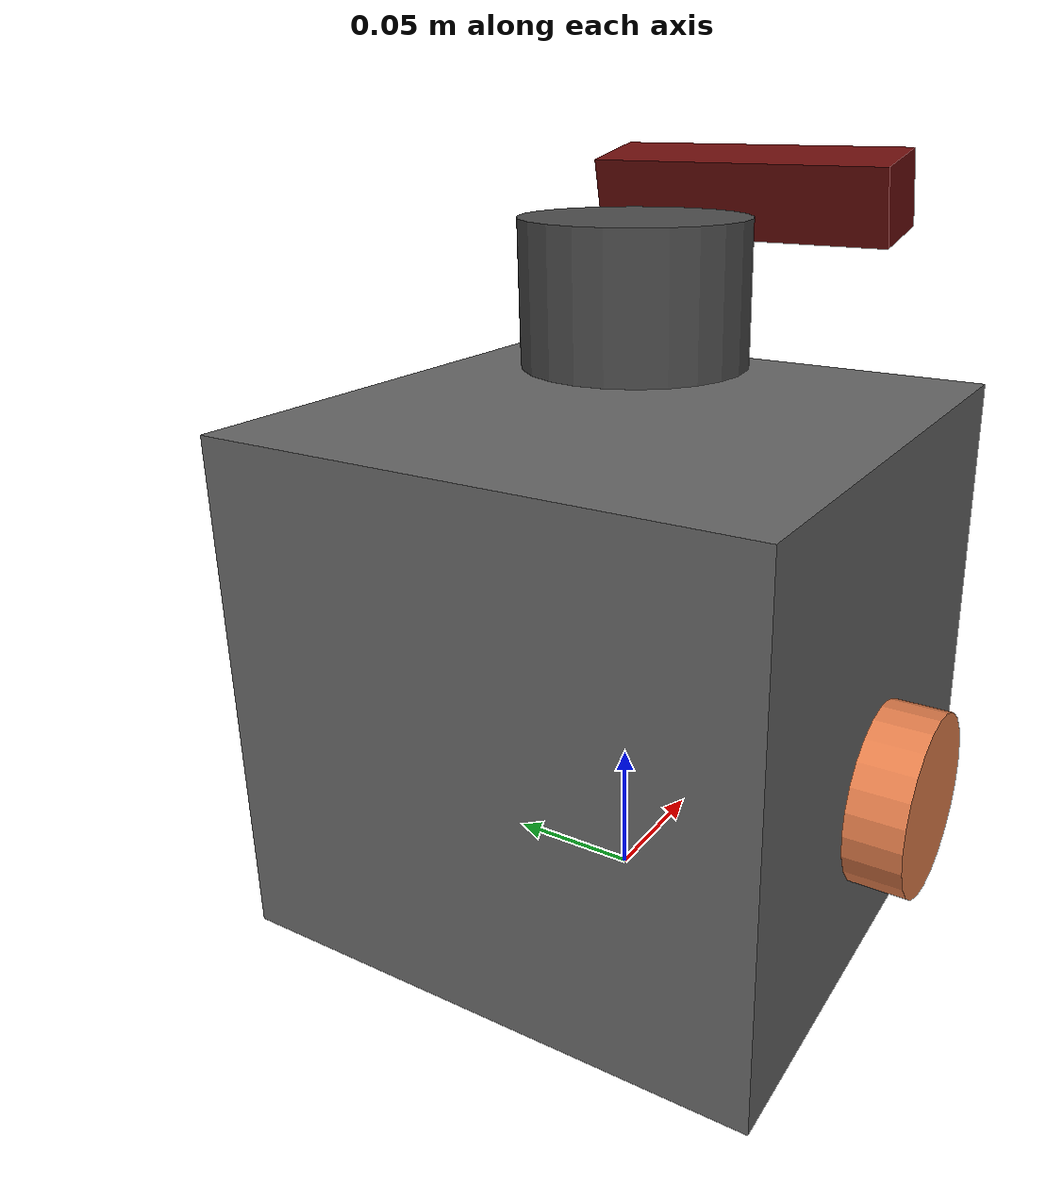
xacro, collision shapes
<?xml version="1.0"?>
<robot name="linorobot2_2wd" xmlns:xacro="http://ros.org/wiki/xacro">

  <xacro:include filename="$(find linorobot2_description)/urdf/2wd_properties.urdf.xacro" />
  <xacro:include filename="$(find linorobot2_description)/urdf/mech/base.urdf.xacro" />
  <xacro:include filename="$(find linorobot2_description)/urdf/mech/wheel.urdf.xacro" />
  <xacro:include filename="$(find linorobot2_description)/urdf/mech/caster_wheel.urdf.xacro" />
  <xacro:include filename="$(find linorobot2_description)/urdf/sensors/imu.urdf.xacro" />
  <xacro:include filename="$(find linorobot2_description)/urdf/sensors/generic_laser.urdf.xacro" />
  <xacro:include filename="$(find linorobot2_description)/urdf/sensors/depth_sensor.urdf.xacro" />
  <xacro:include filename="$(find linorobot2_description)/urdf/controllers/diff_drive.urdf.xacro" />

  <xacro:base
    length="${base_length}"
    width="${base_width}"
    height="${base_height}"
    mass="${base_mass}"
    wheel_radius="${wheel_radius}"
    wheel_pos_z="${wheel_pos_z}"
/>
<!--xyz=0.00004066, -0.10688, 0"  IGNORE   4.0661E-05 -0.10688 0 -->
  <xacro:wheel
    side="right"
    radius="${wheel_radius}"
    width="${wheel_width}"
    pos_x="${wheel_pos_x}"
    pos_y="${-wheel_pos_y}"
    pos_z="${wheel_pos_z}"
    mass="${wheel_mass}"
  />
  <xacro:wheel
    side="left"
    radius="${wheel_radius}"
    width="${wheel_width}"
    pos_x="${wheel_pos_x}"
    pos_y="${wheel_pos_y}"
    pos_z="${wheel_pos_z}"
    mass="${wheel_mass}"
  />

  <xacro:if value="${front_caster_wheel}">
    <xacro:caster_wheel
      side="front"
      mass="0.01"
      base_length="${base_length}"
      wheel_radius="${wheel_radius}"
      wheel_pos_z="-0.0263800000000001"
    />
  </xacro:if>

  <xacro:if value="${rear_caster_wheel}">
    <xacro:caster_wheel
      side="rear"
      mass="0.01"
      base_length="${base_length}"
      wheel_radius="${wheel_radius}"
      wheel_pos_z="-0.0263800000000001"
    />
  </xacro:if>

  <xacro:imu/>

  <xacro:generic_laser>
    <xacro:insert_block name="laser_pose" />
  </xacro:generic_laser>

  <xacro:depth_sensor>
    <xacro:insert_block name="depth_sensor_pose" />
  </xacro:depth_sensor>

  <xacro:diff_drive_controller
    wheel_separation="${wheel_pos_y * 2}"
    wheel_radius="${wheel_radius}"
    wheel_torque="${wheel_torque}"
  />
</robot>

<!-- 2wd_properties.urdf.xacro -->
<robot xmlns:xacro="http://ros.org/wiki/xacro">
  <xacro:property name="base_length" value="0.20" />
  <xacro:property name="base_width" value="0.20" />
  <xacro:property name="base_height" value="0.18852" />
  <xacro:property name="base_mass" value="2.5" />

  <xacro:property name="wheel_radius" value="0.0325" />
  <xacro:property name="wheel_width" value="0.027" />
  <xacro:property name="wheel_pos_x" value="0.0" />
  <xacro:property name="wheel_pos_y" value="0.10688" />
  <xacro:property name="wheel_pos_z" value="0.0325" />
  <xacro:property name="wheel_mass" value="0.7181" />
  <xacro:property name="wheel_torque" value="0.43" />
  <xacro:property name="front_caster_wheel" value="false" />
  <xacro:property name="rear_caster_wheel" value="false" />
  <xacro:property name="wheel_coast" value="-0.0263800000000001" />

  <xacro:property name="laser_pose">
    <origin xyz="0.00669528741938097 -7.83717636255732E-05 0.19525868699062" rpy="0 0 0"/>
  </xacro:property>

  <xacro:property name="depth_sensor_pose">
    <origin xyz="0.10 0.0 0.2225" rpy="0 -0.20 0"/>
  </xacro:property>

  <!-- Unused -->
  <xacro:property name="rear_camera_sensor_pose">
    <origin xyz="-0.14 0.0 0.045" rpy="0 0 3.14159"/>
  </xacro:property>
  <!-- Unused -->

</robot>

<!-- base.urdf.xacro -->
<robot xmlns:xacro="http://ros.org/wiki/xacro">
  <xacro:macro name="base" params="length width height mass wheel_radius wheel_pos_z">
    <link name="base_footprint" />

    <link name="base_link">
      <visual>
        <origin xyz="0 0 0" rpy="0 0 0"/>
        <geometry>
          <mesh filename="package://linorobot2_description/meshes/base_link.STL" scale="1 1 1"/>
        </geometry>
        <material name="light_black">
          <color rgba="0.4 0.4 0.4 1.0"/>
        </material>
      </visual>

      <collision>
        <origin xyz="0 0 ${height/2-wheel_pos_z}" rpy="0 0 0"/>
        <geometry>
          <box size="${length} ${width} ${height}"/>
        </geometry>
      </collision>

      <inertial>
      <origin
        xyz="0 0 0" rpy="0 0 0" />

      <mass value="2.5" />
      <inertia
        ixx="0.0116916235837784"
        ixy="-8.10920537712205E-06"
        ixz="3.2206377195194E-06"
        iyy="0.010715791296685"
        iyz="-2.38716537151557E-05"
        izz="0.00946805534827865" />
    </inertial>
    </link>

    <gazebo reference="base_link">
      <visual>
        <material>

        </material>
      </visual>
      <material>Gazebo/White</material>
    </gazebo>

    <joint name="base_to_footprint" type="fixed">
      <parent link="base_footprint"/>
      <child link="base_link"/>
      <origin xyz="0 0 0.0325" rpy="0 0 0"/>
    </joint>
  </xacro:macro>
</robot>

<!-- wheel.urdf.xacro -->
<robot xmlns:xacro="http://ros.org/wiki/xacro">
  <xacro:macro name="wheel" params="side radius width pos_x pos_y pos_z mass">
    <link name="${side}_wheel_link">
      <visual>
        <origin xyz="0 0 0" rpy="0 0 0"/>
        <geometry>
           <mesh filename="file://$(find linorobot2_description)/meshes/wheel_${side}.STL" scale="1 1 1"/>
        </geometry>
        <material name="dark">
          <color rgba="0.9 0.5 0.3 1.0"/>
        </material>
      </visual>
      <collision>
        <origin xyz="0 0 0" rpy="${pi/2} 0 0"/>
        <geometry>
          <cylinder radius="${radius}" length="${width}"/>
        </geometry>
      </collision>

      <inertial>
        <origin xyz="0 0 0" rpy="0 0 0"/>
        <mass value="${mass}"/>
        <inertia ixx="${(1/12) * mass * (3*radius*radius + width*width)}" ixy="-8.10920537712205E-06"
        ixz="3.2206377195194E-06"
                 iyy="${(1/2) * mass * (radius*radius)}" iyz="-2.38716537151557E-05"
                 izz="${(1/12) * mass * (3*radius*radius + width*width)}" />
      </inertial>
    </link>
    <gazebo reference="${side}_wheel_link">
      <visual>
        <material>

        </material>
      </visual>
      <material>Gazebo/FlatBlack</material>
    </gazebo>

    <joint name="${side}_wheel_joint" type="continuous">
      <axis xyz="0 1 0" />
      <parent link="base_link"/>
      <child link="${side}_wheel_link"/>
      <origin xyz="${pos_x} ${pos_y} ${pos_z}" rpy="0 0 0"/>
    </joint>
  </xacro:macro>
</robot>

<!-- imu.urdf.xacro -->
<robot xmlns:xacro="http://ros.org/wiki/xacro">
  <xacro:macro name="imu">
    <link name="imu_link"/>

    <joint name="imu_to_base_link" type="fixed">
      <parent link="base_link"/>
      <child link="imu_link"/>
      <origin xyz="0.0 0.0 0.0436" rpy="0 0 0"/>
    </joint>

    <gazebo reference="imu_link">
      <gravity>true</gravity>
      <sensor name="imu_sensor" type="imu">
      <always_on>true</always_on>
      <update_rate>20</update_rate>
      <visualize>true</visualize>
      <topic>__default_topic__</topic>
      <plugin filename="libgazebo_ros_imu_sensor.so" name="imu_plugin">
          <ros>
            <remapping>~/out:=imu/data</remapping>
          </ros>
          <topicName>imu/data</topicName>
          <bodyName>imu_link</bodyName>
          <updateRateHZ>10.0</updateRateHZ>
          <gaussianNoise>0.0</gaussianNoise>
          <xyzOffset>0 0 0</xyzOffset>
          <rpyOffset>0 0 0</rpyOffset>
          <frameName>imu_link</frameName>
          <initialOrientationAsReference>false</initialOrientationAsReference>
      </plugin>
      <pose>0 0 0 0 0 0</pose>
      </sensor>
    </gazebo>
  </xacro:macro>
</robot>

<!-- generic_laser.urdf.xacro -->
<robot xmlns:xacro="http://ros.org/wiki/xacro">
  <xacro:include filename="$(find linorobot2_description)/urdf/sensors/laser.urdf.xacro" />

  <xacro:macro name="generic_laser" params="*origin">
    <xacro:laser
      update_rate="10"
      ray_count="360"
      min_angle="-3.1416"
      max_angle="3.1416"
      min_range="0.08"
      max_range="12.0"
      frame_id="laser"
      topic_name="/scan"
    >
      <xacro:insert_block name="origin" />
    </xacro:laser>
  </xacro:macro>

  <xacro:macro name="generic_base_laser" params="*origin">
    <xacro:laser
      update_rate="10"
      ray_count="360"
      min_angle="-3.1416"
      max_angle="3.1416"
      min_range="0.21"
      max_range="5.5"
      frame_id="base_laser"
      topic_name="base/scan"
    >
      <xacro:insert_block name="origin" />
    </xacro:laser>
  </xacro:macro>
</robot>

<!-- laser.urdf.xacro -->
<robot xmlns:xacro="http://ros.org/wiki/xacro">
  <xacro:property name="M_PI" value="3.1415926535897931" />
  <xacro:property name="ld_radius" value="0.04" />
  <xacro:property name="ld_height" value="0.05" />
  <xacro:property name="ld_mass" value="0.16" />
  <xacro:macro name="laser" params="*origin update_rate ray_count min_angle max_angle min_range max_range frame_id topic_name">
    <link name="${frame_id}">
      <visual>
        <origin xyz="0 0 0" rpy="0 0 0"/>
        <geometry>
          <mesh filename="package://linorobot2_description/meshes/lidar.STL" scale="1 1 1"/>
        </geometry>
        <material name="dark">
          <color rgba="0.3 0.3 0.3 1.0"/>
        </material>
      </visual>
      <collision>
        <origin xyz="0 0 0" rpy="0 0 0"/>
        <geometry>
          <cylinder radius="${ld_radius}" length="${ld_height}"/>
        </geometry>
      </collision>

      <inertial>
        <origin xyz="0 0 0" rpy="0 0 0"/>
        <mass value="${ld_mass}"/>
        <inertia ixx="${(1/12) * ld_mass * (3*ld_radius*ld_radius + ld_height*ld_height)}" ixy="0" ixz="0"
                 iyy="${(1/12) * ld_mass * (3*ld_radius*ld_radius + ld_height*ld_height)}" iyz="0"
                 izz="${(1/2) * ld_mass * (ld_radius*ld_radius)}" />
      </inertial>
    </link>

    <gazebo reference="${frame_id}">
      <visual>
        <material>

        </material>
      </visual>
      <material>Gazebo/FlatBlack</material>
    </gazebo>

    <joint name="${frame_id}_to_base_link" type="fixed">
      <parent link="base_link"/>
      <child link="${frame_id}"/>
      <xacro:insert_block name="origin" />
    </joint>

    <gazebo reference="${frame_id}">
      <!-- TODO: change to "gpu_ray" for better performance -->
      <sensor type="ray" name="${frame_id}_lidar">
        <always_on>true</always_on>
        <update_rate>${update_rate}</update_rate>
        <pose>0 0 0 0 0 0</pose>
        <visualize>false</visualize>
        <ray>
          <scan>
            <horizontal>
              <samples>${ray_count}</samples>
              <resolution>1</resolution>
              <min_angle>${min_angle}</min_angle>
              <max_angle>${max_angle}</max_angle>
            </horizontal>
          </scan>
          <range>
            <min>${min_range}</min>
            <max>${max_range}</max>
            <resolution>0.01</resolution>
          </range>
        </ray>
        <plugin name="${frame_id}_lidar_controller" filename="libgazebo_ros_ray_sensor.so">
          <ros>
            <remapping>~/out:=${topic_name}</remapping>
          </ros>
          <output_type>sensor_msgs/LaserScan</output_type>
          <alwaysOn>true</alwaysOn>
          <updateRate>${update_rate}</updateRate>
          <topicName>${topic_name}</topicName>
          <frame_name>${frame_id}</frame_name>
          <output_type>sensor_msgs/LaserScan</output_type>
        </plugin>
      </sensor>
    </gazebo>
  </xacro:macro>
</robot>

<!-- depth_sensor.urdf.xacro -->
<robot xmlns:xacro="http://ros.org/wiki/xacro">
  <xacro:property name="M_PI" value="3.1415926535897931" />
  <xacro:macro name="depth_sensor" params="*origin">
    <link name="camera_link">
      <visual>
        <origin xyz="0 0 0" rpy="0 0 0"/>
        <geometry>
          <box size="0.030 0.124 0.030"/>
        </geometry>
        <material name="red">
          <color rgba="0.416 0.051 0.047 1.0"/>
        </material>
      </visual>

      <collision>
        <origin xyz="0 0 0" rpy="0 0 0"/>
        <geometry>
          <box size="0.030 0.124 0.030"/>
        </geometry>
      </collision>

      <inertial>
        <origin xyz="0 0 0" rpy="0 0 0"/>
        <mass value="0.135"/>
        <inertia ixx="${(1/12) * 0.135 * ((0.124  * 0.124)  + (0.030 * 0.030))}" ixy="0.0" ixz="0.0"
                 iyy="${(1/12) * 0.135 * ((0.030 * 0.030) + (0.030 * 0.030))}" iyz="0.0"
                 izz="${(1/12) * 0.135 * ((0.030 * 0.030) + (0.124  * 0.124))}"/>
      </inertial>
    </link>

    <gazebo reference="camera_link">
      <visual>
        <material>
          <ambient>0.416 0.051 0.047 1.0</ambient>
          <diffuse>0.416 0.051 0.047 1.0</diffuse>
          <specular>0.416 0.051 0.047 1.0</specular>
          <emissive>0.416 0.051 0.047 1.0</emissive>
        </material>
      </visual>
    </gazebo>

    <joint name="camera_to_base_link" type="fixed">
      <parent link="base_link"/>
      <child link="camera_link"/>
      <xacro:insert_block name="origin" />
    </joint>

    <link name="camera_depth_link"/>
    <joint name="camera_depth_joint" type="fixed">
      <origin xyz="0 0 0" rpy="-1.57 0 -1.57"/>
      <parent link="camera_link"/>
      <child link="camera_depth_link"/>
    </joint>

    <!-- https://github.com/ros-simulation/gazebo_ros_pkgs/wiki/ROS-2-Migration:-Camera#gazebo_ros_camera -->
    <gazebo reference="camera_link">
      <sensor name="camera" type="depth">
        <always_on>true</always_on>
        <update_rate>8.0</update_rate>
        <camera name="camera">
          <horizontal_fov>1.50098</horizontal_fov>
          <image>
            <width>640</width>
            <height>480</height>
            <format>R8G8B8</format>
          </image>
          <!-- People are tracked out to maximum_depth = 12.0 m. The default
               far plane would render scenery no one measures. -->
          <clip>
            <near>0.1</near>
            <far>12.0</far>
          </clip>
        </camera>
        <plugin name="depth_camera_controller" filename="libgazebo_ros_camera.so">
          <ros>
            <remapping>/camera/camera_info:=/camera/color/camera_info</remapping>
            <remapping>/camera/image_raw:=/camera/color/image_raw</remapping>
            <remapping>/camera/points:=/camera/depth/color/points</remapping>
            <remapping>/camera/depth/image_raw:=/camera/depth/image_rect_raw</remapping>
            <qos>
              <topic name="/camera/depth/color/points">
                <publisher>
                  <reliability>best_effort</reliability>
                </publisher>
              </topic>
            </qos>
          </ros>
          <min_depth>0.015</min_depth>
          <!-- Was 3.0, which clamped every person past 3 m to the same reading
               and made them unusable to the tracker. Matches maximum_depth in
               social_vlm_perception.yaml. -->
          <max_depth>12.0</max_depth>
          <hack_baseline>0.07</hack_baseline>
          <frame_name>camera_depth_link</frame_name>
          <distortion_k1>0.00000001</distortion_k1>
          <distortion_k2>0.00000001</distortion_k2>
          <distortion_k3>0.00000001</distortion_k3>
          <distortion_t1>0.00000001</distortion_t1>
          <distortion_t2>0.00000001</distortion_t2>
        </plugin>
      </sensor>

    </gazebo>
  </xacro:macro>
</robot>
